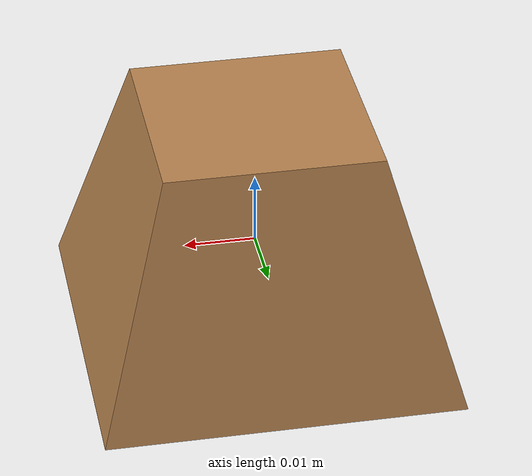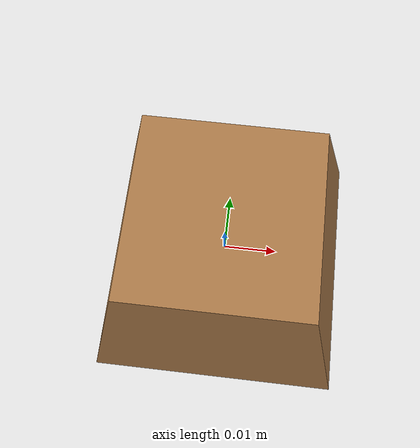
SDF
<?xml version='1.0'?>
<sdf version='1.4'>
  <model name="fourPrismoid">
    <static>false</static>
    <link name="link">
      <pose>0 0 0 0 0 0</pose>
      <inertial>
        <mass>0.07</mass>
        <inertia>
          <ixx>0.000010</ixx>
          <iyy>0.000010</iyy>
          <izz>0.000010</izz>
        </inertia>
      </inertial>
      <collision name="collision">
        <geometry>
             <mesh>
  	        <scale>0.01 0.01 0.01</scale>
            <uri>model://fourPrismoid/meshes/fourPrismoid.dae</uri>
          </mesh>
        </geometry>
        <surface>
          <contact>
            <ode>
              <max_vel>0.1</max_vel>
              <min_depth>0.001</min_depth>
            </ode>
          </contact>
        </surface>
      </collision>
      <visual name="visual">
        <geometry>
          <mesh>
  	        <scale>0.01 0.01 0.01</scale>
            <uri>model://fourPrismoid/meshes/fourPrismoid.dae</uri>
          </mesh>
        </geometry>
        <material>
          <script>
            <name>Gazebo/WoodTile</name>
            <uri>file://media/materials/scripts/gazebo.material</uri>
          </script>
        </material>
      </visual>
    </link>
  </model>
</sdf>
